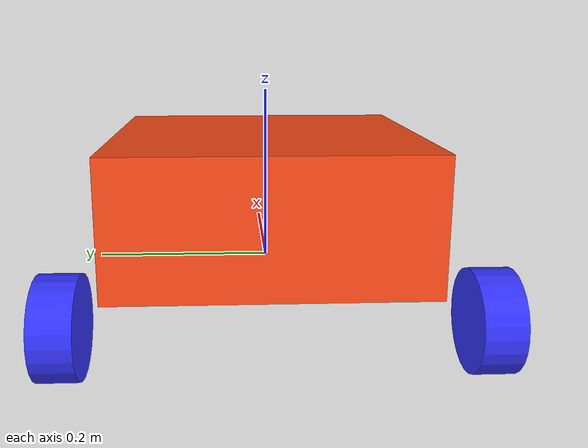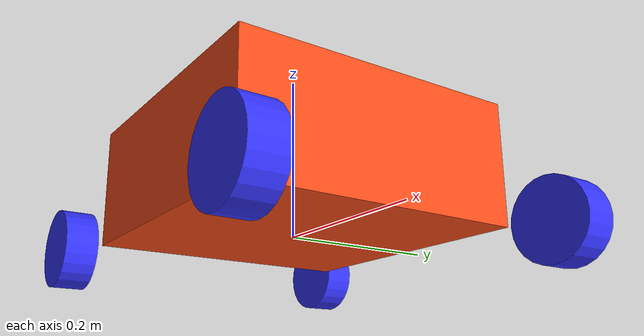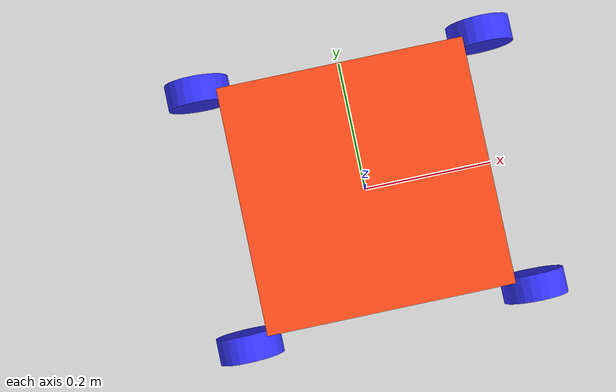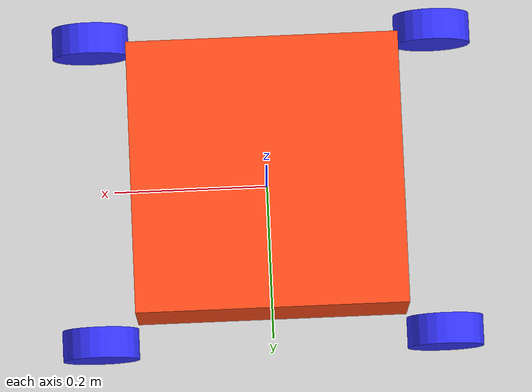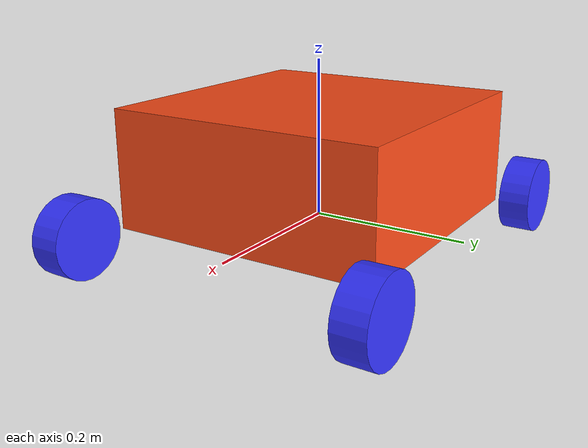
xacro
<?xml version="1.0"?>
<robot xmlns:xacro="http://www.ros.org/wiki/xacro" xmlns:gz="http://gazebosim.org/schema"
    name="mecanum_robot">

    <xacro:include filename="$(find robot_description)/urdf/inertial_macros.xacro" />

    <material name="orange">
        <color rgba="1 0.3 0.1 1" />
    </material>
    <material name="blue">
        <color rgba="0.2 0.2 1 1" />
    </material>
    <material name="black">
        <color rgba="0 0 0 1" />
    </material>

    <link name="base_link">
        <xacro:inertial_box mass="5.0" x="0.35" y="0.35" z="0.15">
            <origin xyz="0 0 0.075" />
        </xacro:inertial_box>
    </link>

    <link name="chassis">
        <visual>
            <origin xyz="0 0 0.075" />
            <geometry>
                <box size="0.35 0.35 0.15" />
            </geometry>
            <material name="orange" />
        </visual>
        <collision>
            <origin xyz="0 0 0.075" />
            <geometry>
                <box size="0.35 0.35 0.15" />
            </geometry>
        </collision>
    </link>

    <joint name="chassis_joint" type="fixed">
        <parent link="base_link" />
        <child link="chassis" />
    </joint>

    <xacro:macro name="wheel" params="name x y fdir">
        <joint name="${name}_joint" type="continuous">
            <parent link="base_link" />
            <child link="${name}" />
            <origin xyz="${x} ${y} 0" rpy="0 0 0" />
            <axis xyz="0 1 0" />
            <dynamics damping="0.1" friction="0.1" />
        </joint>

        <link name="${name}">
            <visual>
                <origin xyz="0 0 0" rpy="${pi/2} 0 0" />
                <geometry>
                    <cylinder radius="0.05" length="0.04" />
                </geometry>
                <material name="blue" />
            </visual>
            <collision>
                <origin xyz="0 0 0" rpy="${pi/2} 0 0" />
                <geometry>
                    <cylinder radius="0.05" length="0.04" />
                </geometry>
            </collision>
            <xacro:inertial_cylinder mass="1.5" length="0.04" radius="0.05">
                <origin xyz="0 0 0" rpy="${pi/2} 0 0" />
            </xacro:inertial_cylinder>
        </link>

        <gazebo reference="${name}">
            <collision>
                <surface>
                    <friction>
                        <ode>
                            <mu>1.0</mu>
                            <mu2>0.0</mu2>
                            <fdir1 gz:expressed_in="base_link">${fdir}</fdir1>
                        </ode>
                    </friction>
                </surface>
            </collision>
        </gazebo>
    </xacro:macro>

    <xacro:wheel name="front_left_wheel" x="0.225" y="0.2" fdir="1 -1 0" />
    <xacro:wheel name="front_right_wheel" x="0.225" y="-0.2" fdir="1 1 0" />
    <xacro:wheel name="rear_left_wheel" x="-0.225" y="0.2" fdir="1 1 0" />
    <xacro:wheel name="rear_right_wheel" x="-0.225" y="-0.2" fdir="1 -1 0" />

    <gazebo>
        <plugin filename="gz-sim-mecanum-drive-system" name="gz::sim::systems::MecanumDrive">
            <front_left_joint>front_left_wheel_joint</front_left_joint>
            <front_right_joint>front_right_wheel_joint</front_right_joint>
            <back_left_joint>rear_left_wheel_joint</back_left_joint>
            <back_right_joint>rear_right_wheel_joint</back_right_joint>
            <wheel_separation>0.4</wheel_separation>
            <wheelbase>0.45</wheelbase>
            <wheel_radius>0.05</wheel_radius>
            <min_acceleration>-1.5</min_acceleration>
            <max_acceleration>1.5</max_acceleration>
            <topic>cmd_vel</topic>
            <odom_topic>odom</odom_topic>
            <tf_topic>tf</tf_topic>
            <frame_id>odom</frame_id>
            <child_frame_id>base_link</child_frame_id>
            <odom_publish_frequency>50</odom_publish_frequency>
        </plugin>
        <plugin filename="gz-sim-joint-state-publisher-system"
            name="gz::sim::systems::JointStatePublisher">
            <topic>joint_states</topic>
        </plugin>
    </gazebo>
</robot>

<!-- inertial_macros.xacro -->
<robot xmlns:xacro="http://www.ros.org/wiki/xacro">

    <xacro:macro name="inertial_box" params="mass x y z *origin">
        <inertial>
            <xacro:insert_block name="origin" />
            <mass value="${mass}" />
            <inertia ixx="${(1/12) * mass * (y*y+z*z)}" ixy="0.0" ixz="0.0"
                iyy="${(1/12) * mass * (x*x+z*z)}" iyz="0.0"
                izz="${(1/12) * mass * (x*x+y*y)}" />
        </inertial>
    </xacro:macro>

    <xacro:macro name="inertial_cylinder" params="mass radius length *origin">
        <inertial>
            <xacro:insert_block name="origin" />
            <mass value="${mass}" />
            <inertia ixx="${(1/12) * mass * (3*radius*radius + length*length)}" ixy="0.0" ixz="0.0"
                iyy="${(1/12) * mass * (3*radius*radius + length*length)}" iyz="0.0"
                izz="${(1/2) * mass * (radius*radius)}" />
        </inertial>
    </xacro:macro>

</robot>
